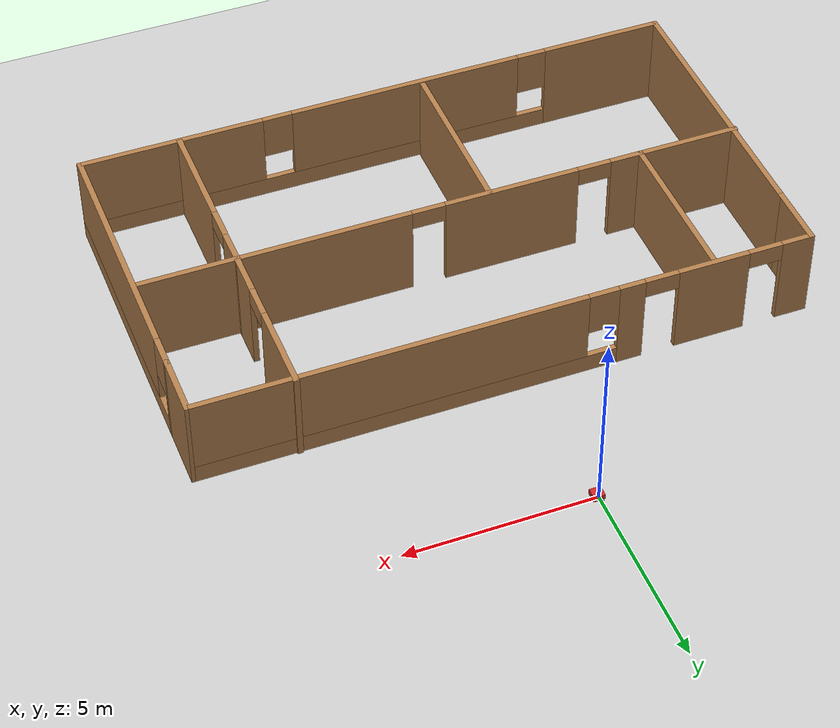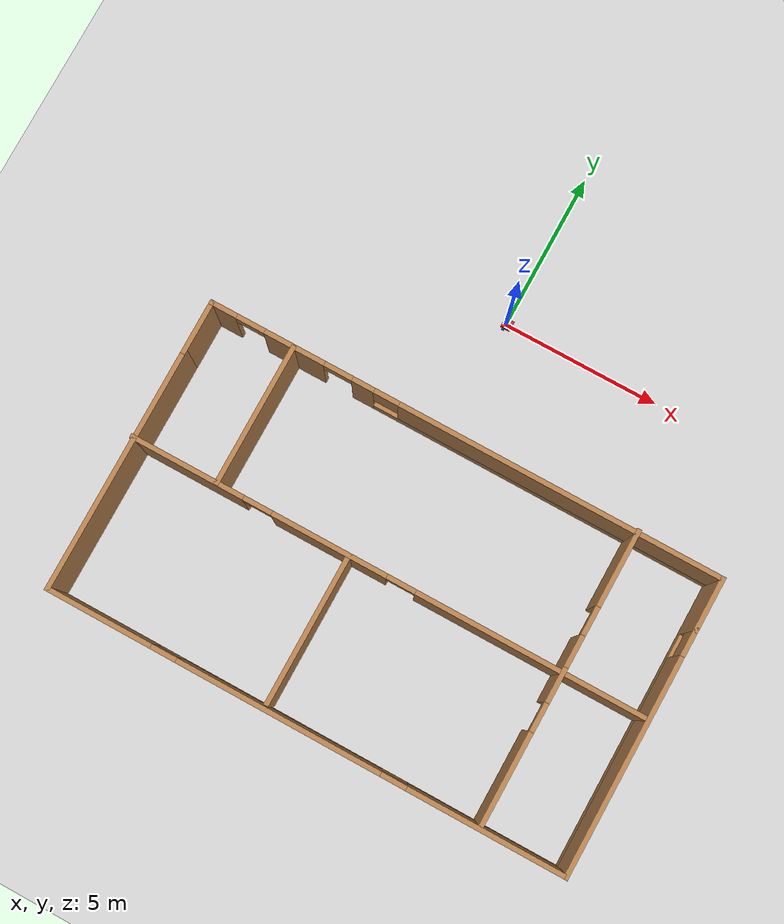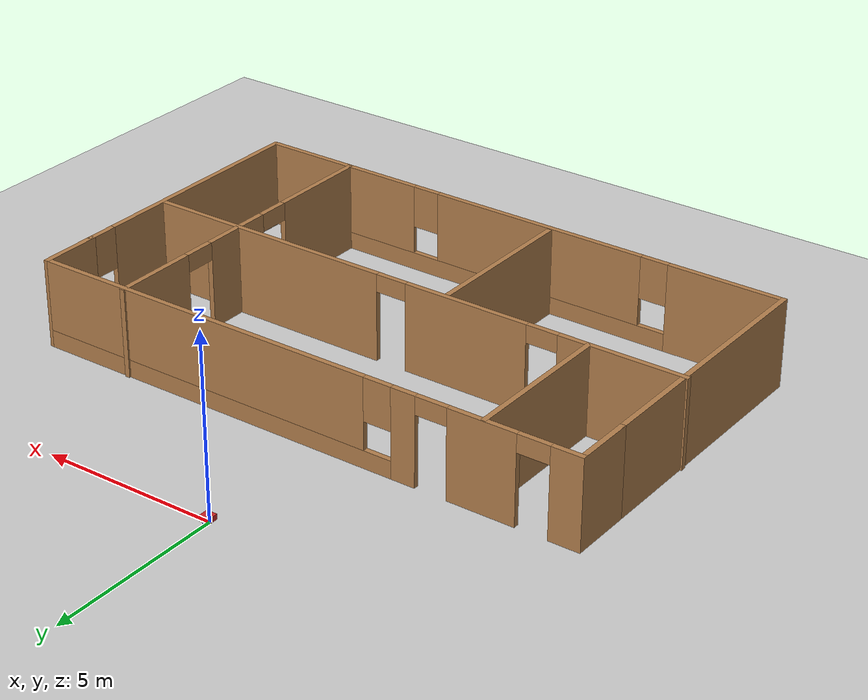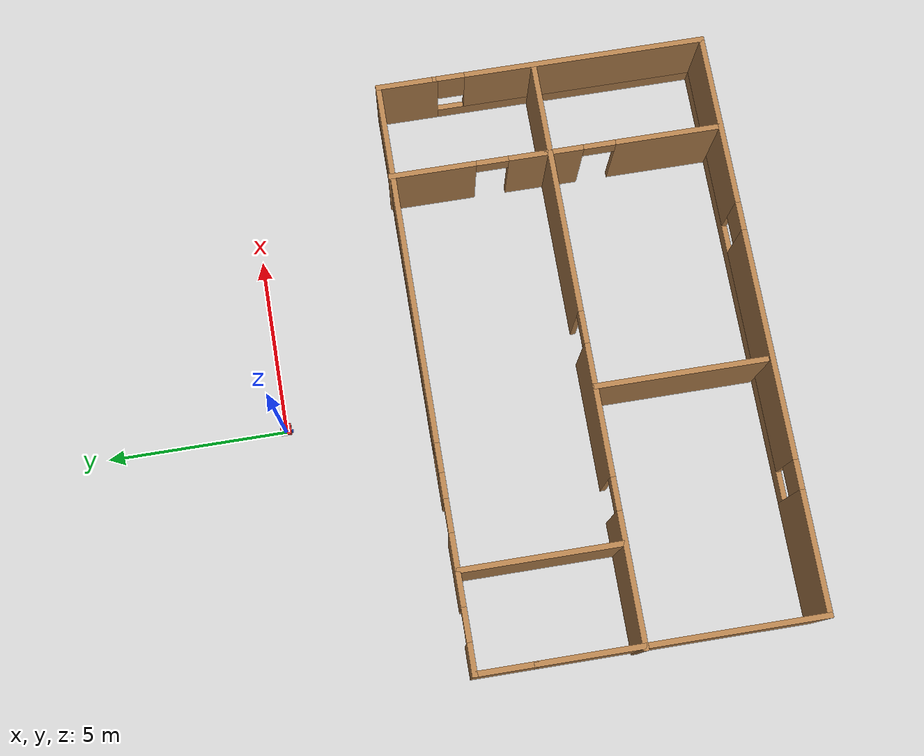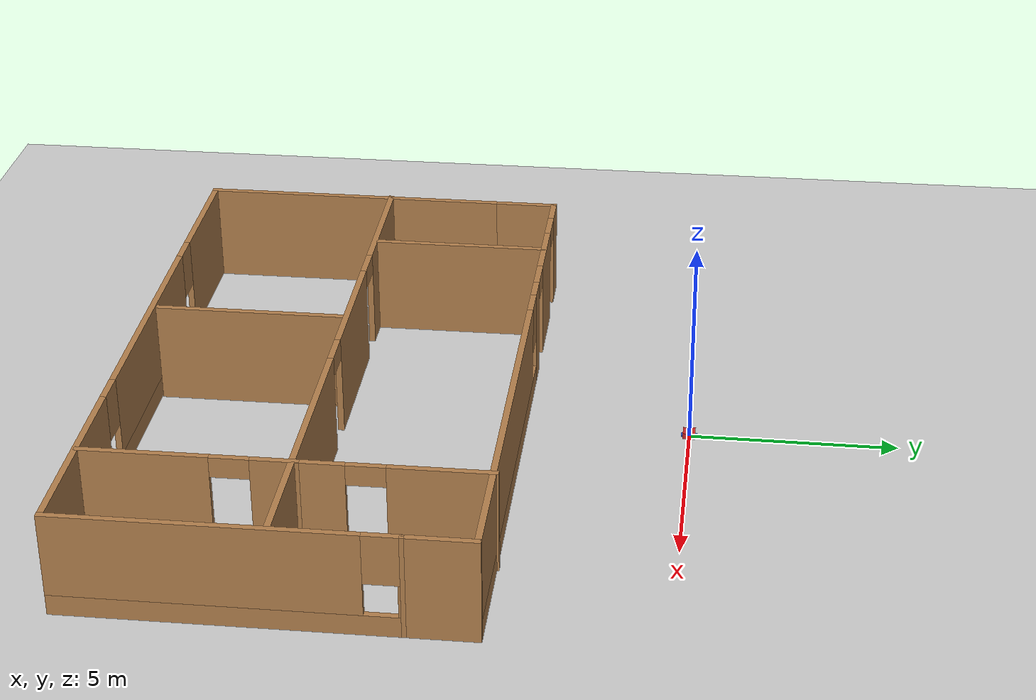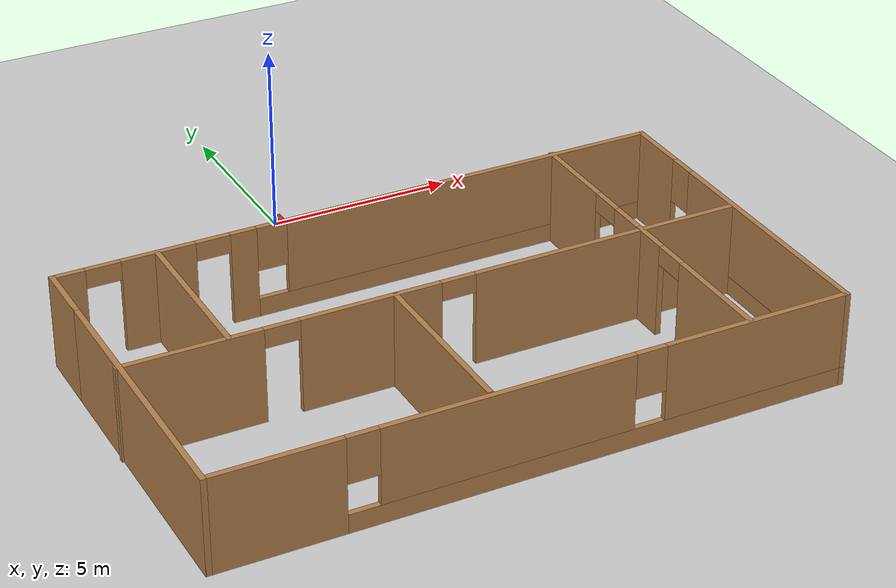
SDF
<sdf version="1.7">
 <world name="default">
  <light name="sun" type="directional">
   <pose>0 0 10 0 -0 0</pose>
   <diffuse>0.8 0.8 0.8 1</diffuse>
   <specular>0.2 0.2 0.2 1</specular>
   <attenuation>
    <range>1000</range>
    <constant>0.9</constant>
    <linear>0.01</linear>
    <quadratic>0.001</quadratic>
   </attenuation>
   <direction>-0.5 0.1 -0.9</direction>
   <spot><inner_angle>0</inner_angle><outer_angle>0</outer_angle><falloff>0</falloff></spot>
  </light>
  <model name="ground_plane">
   <static>1</static>
   <link name="link">
    <collision name="collision">
     <geometry><plane><normal>0 0 1</normal><size>100 100</size></plane></geometry>
     <surface>
      <contact><collide_bitmask>65535</collide_bitmask></contact>
      <friction><ode><mu>100</mu><mu2>50</mu2></ode></friction>
     </surface>
    </collision>
    <visual name="visual">
     <cast_shadows>0</cast_shadows>
     <geometry><plane><normal>0 0 1</normal><size>100 100</size></plane></geometry>
     <material>
      <script><uri>file://media/materials/scripts/gazebo.material</uri><name>Gazebo/Grey</name></script>
     </material>
    </visual>
   </link>
  </model>
  <gravity>0 0 -9.8</gravity>
  <magnetic_field>6e-06 2.3e-05 -4.2e-05</magnetic_field>
  <atmosphere type="adiabatic"/>
  <physics type="ode">
   <max_step_size>0.001</max_step_size>
   <real_time_factor>1</real_time_factor>
   <real_time_update_rate>1000</real_time_update_rate>
  </physics>
  <scene><ambient>0.4 0.4 0.4 1</ambient><background>0.7 0.7 0.7 1</background><shadows>1</shadows></scene>
  <audio><device>default</device></audio>
  <spherical_coordinates>
   <surface_model>EARTH_WGS84</surface_model>
   <latitude_deg>0</latitude_deg>
   <longitude_deg>0</longitude_deg>
   <elevation>0</elevation>
   <heading_deg>0</heading_deg>
  </spherical_coordinates>
  <model name="my_bot">
   <link name="base_link">
    <inertial>
     <pose>0.058857 0 0.083857 0 -0 0</pose>
     <mass>0.7</mass>
     <inertia>
      <ixx>0.00724782</ixx>
      <ixy>0</ixy>
      <ixz>0.00111351</ixz>
      <iyy>0.0080813</iyy>
      <iyz>0</iyz>
      <izz>0.00855849</izz>
     </inertia>
    </inertial>
    <collision name="base_link_fixed_joint_lump__chassis_collision">
     <pose>0.05 0 0.075 0 -0 0</pose>
     <geometry><box><size>0.3 0.3 0.15</size></box></geometry>
    </collision>
    <collision name="base_link_fixed_joint_lump__caster_wheel_collision_1">
     <pose>0.14 0 0 0 -0 0</pose>
     <geometry><sphere><radius>0.05</radius></sphere></geometry>
     <surface><friction><ode><mu>0.001</mu><mu2>0.001</mu2></ode></friction></surface>
    </collision>
    <collision name="base_link_fixed_joint_lump__laser_frame_collision_2">
     <pose>0.022 0 0.212 0 -0 0</pose>
     <geometry><cylinder><length>0.04</length><radius>0.05</radius></cylinder></geometry>
    </collision>
    <visual name="base_link_fixed_joint_lump__chassis_visual">
     <pose>0.05 0 0.075 0 -0 0</pose>
     <geometry><box><size>0.3 0.3 0.15</size></box></geometry>
     <material>
      <script><name>Gazebo/Red</name><uri>file://media/materials/scripts/gazebo.material</uri></script>
     </material>
    </visual>
    <visual name="base_link_fixed_joint_lump__camera_link_visual_1">
     <pose>0.205 0 0.08 0 -0 0</pose>
     <geometry><box><size>0.01 0.03 0.03</size></box></geometry>
     <material>
      <script><name>Gazebo/Brown</name><uri>file://media/materials/scripts/gazebo.material</uri></script>
     </material>
    </visual>
    <visual name="base_link_fixed_joint_lump__camera_link_visual_2">
     <pose>0.205 0 0.03 0 -0 0</pose>
     <geometry><cylinder><length>0.1</length><radius>0.002</radius></cylinder></geometry>
     <material>
      <script><name>Gazebo/Brown</name><uri>file://media/materials/scripts/gazebo.material</uri></script>
     </material>
    </visual>
    <visual name="base_link_fixed_joint_lump__caster_wheel_visual_3">
     <pose>0.14 0 0 0 -0 0</pose>
     <geometry><sphere><radius>0.05</radius></sphere></geometry>
     <material>
      <script><name>Gazebo/Black</name><uri>file://media/materials/scripts/gazebo.material</uri></script>
     </material>
    </visual>
    <visual name="base_link_fixed_joint_lump__laser_frame_visual_4">
     <pose>0.022 0 0.212 0 -0 0</pose>
     <geometry><cylinder><length>0.04</length><radius>0.05</radius></cylinder></geometry>
     <material>
      <script><name>Gazebo/Black</name><uri>file://media/materials/scripts/gazebo.material</uri></script>
     </material>
    </visual>
    <visual name="base_link_fixed_joint_lump__laser_frame_visual_5">
     <pose>0.022 0 0.162 0 -0 0</pose>
     <geometry><cylinder><length>0.1</length><radius>0.01</radius></cylinder></geometry>
     <material>
      <script><name>Gazebo/Black</name><uri>file://media/materials/scripts/gazebo.material</uri></script>
     </material>
    </visual>
    <sensor name="camera" type="camera">
     <visualize>1</visualize>
     <update_rate>10</update_rate>
     <camera>
      <horizontal_fov>1.089</horizontal_fov>
      <image><format>R8G8B8</format><width>640</width><height>480</height></image>
      <clip><near>0.05</near><far>8</far></clip>
     </camera>
     <plugin name="camera_controller" filename="libgazebo_ros_camera.so">
      <frame_name>camera_link_optical</frame_name>
     </plugin>
     <pose>0.205 0 0.08 0 -0 0</pose>
    </sensor>
    <sensor name="laser" type="ray">
     <visualize>0</visualize>
     <update_rate>10</update_rate>
     <ray>
      <scan>
       <horizontal>
        <samples>360</samples>
        <min_angle>-3.14</min_angle>
        <max_angle>3.14</max_angle>
        <resolution>1</resolution>
       </horizontal>
       <vertical><samples>1</samples><min_angle>0</min_angle><max_angle>0</max_angle></vertical>
      </scan>
      <range><min>0.3</min><max>12</max></range>
     </ray>
     <plugin name="laser_controller" filename="libgazebo_ros_ray_sensor.so">
      <ros><argument>~/out:=scan</argument></ros>
      <output_type>sensor_msgs/LaserScan</output_type>
      <frame_name>laser_frame</frame_name>
     </plugin>
     <pose>0.022 0 0.212 0 -0 0</pose>
    </sensor>
   </link>
   <joint name="left_wheel_joint" type="revolute">
    <pose relative_to="base_link">0 0.175 0 -1.5708 0 0</pose>
    <parent>base_link</parent>
    <child>left_wheel</child>
    <axis>
     <xyz>0 0 1</xyz>
     <limit><lower>-1e+16</lower><upper>1e+16</upper></limit>
     <dynamics><spring_reference>0</spring_reference><spring_stiffness>0</spring_stiffness></dynamics>
    </axis>
   </joint>
   <link name="left_wheel">
    <pose relative_to="left_wheel_joint">0 0 0 0 -0 0</pose>
    <inertial>
     <mass>0.1</mass>
     <inertia>
      <ixx>7.58333e-05</ixx>
      <ixy>0</ixy>
      <ixz>0</ixz>
      <iyy>7.58333e-05</iyy>
      <iyz>0</iyz>
      <izz>0.000125</izz>
     </inertia>
    </inertial>
    <collision name="left_wheel_collision">
     <geometry><cylinder><length>0.04</length><radius>0.05</radius></cylinder></geometry>
    </collision>
    <visual name="left_wheel_visual">
     <geometry><cylinder><length>0.04</length><radius>0.05</radius></cylinder></geometry>
     <material>
      <script><name>Gazebo/Blue</name><uri>file://media/materials/scripts/gazebo.material</uri></script>
     </material>
    </visual>
   </link>
   <joint name="right_wheel_joint" type="revolute">
    <pose relative_to="base_link">0 -0.175 0 1.5708 -0 0</pose>
    <parent>base_link</parent>
    <child>right_wheel</child>
    <axis>
     <xyz>0 0 -1</xyz>
     <limit><lower>-1e+16</lower><upper>1e+16</upper></limit>
     <dynamics><spring_reference>0</spring_reference><spring_stiffness>0</spring_stiffness></dynamics>
    </axis>
   </joint>
   <link name="right_wheel">
    <pose relative_to="right_wheel_joint">0 0 0 0 -0 0</pose>
    <inertial>
     <mass>0.1</mass>
     <inertia>
      <ixx>7.58333e-05</ixx>
      <ixy>0</ixy>
      <ixz>0</ixz>
      <iyy>7.58333e-05</iyy>
      <iyz>0</iyz>
      <izz>0.000125</izz>
     </inertia>
    </inertial>
    <collision name="right_wheel_collision">
     <geometry><cylinder><length>0.04</length><radius>0.05</radius></cylinder></geometry>
    </collision>
    <visual name="right_wheel_visual">
     <geometry><cylinder><length>0.04</length><radius>0.05</radius></cylinder></geometry>
     <material>
      <script><name>Gazebo/Blue</name><uri>file://media/materials/scripts/gazebo.material</uri></script>
     </material>
    </visual>
   </link>
   <static>0</static>
   <plugin name="gazebo_ros2_control" filename="libgazebo_ros2_control.so">
    <parameters>/home/sampath/dev_ws/install/my_bot/share/my_bot/config/my_controllers.yaml</parameters>
    <parameters>/home/sampath/dev_ws/install/my_bot/share/my_bot/config/gaz_ros2_ctl_use_sim.yaml</parameters>
   </plugin>
   <pose>0.000734 1.8e-05 0.05 0 3e-06 0.000511</pose>
  </model>
  <model name="house1">
   <pose>0.643187 -8.49007 0 0 -0 0</pose>
   <link name="Wall_12">
    <collision name="Wall_12_Collision">
     <geometry><box><size>1.75 0.15 2.5</size></box></geometry>
     <pose>0 0 1.25 0 -0 0</pose>
    </collision>
    <visual name="Wall_12_Visual">
     <pose>0 0 1.25 0 -0 0</pose>
     <geometry><box><size>1.75 0.15 2.5</size></box></geometry>
     <material>
      <script><uri>file://media/materials/scripts/gazebo.material</uri><name>Gazebo/Wood</name></script>
      <ambient>1 1 1 1</ambient>
     </material>
     <meta><layer>0</layer></meta>
    </visual>
    <pose>-8.07599 3.66766 0 0 -0 1.5708</pose>
   </link>
   <link name="Wall_13">
    <pose>-0.025986 4.46767 0 0 -0 0</pose>
    <visual name="Wall_13_Visual_0">
     <pose>-7.68481 0 1.25 0 -0 0</pose>
     <geometry><box><size>0.880381 0.15 2.5</size></box></geometry>
     <material>
      <script><uri>file://media/materials/scripts/gazebo.material</uri><name>Gazebo/Wood</name></script>
      <ambient>1 1 1 1</ambient>
     </material>
     <meta><layer>0</layer></meta>
    </visual>
    <collision name="Wall_13_Collision_0">
     <geometry><box><size>0.880381 0.15 2.5</size></box></geometry>
     <pose>-7.68481 0 1.25 0 -0 0</pose>
    </collision>
    <visual name="Wall_13_Visual_1">
     <pose>-5.38481 0 1.25 0 -0 0</pose>
     <geometry><box><size>1.91962 0.15 2.5</size></box></geometry>
     <material>
      <script><uri>file://media/materials/scripts/gazebo.material</uri><name>Gazebo/Wood</name></script>
      <ambient>1 1 1 1</ambient>
     </material>
     <meta><layer>0</layer></meta>
    </visual>
    <collision name="Wall_13_Collision_1">
     <geometry><box><size>1.91962 0.15 2.5</size></box></geometry>
     <pose>-5.38481 0 1.25 0 -0 0</pose>
    </collision>
    <visual name="Wall_13_Visual_2">
     <pose>-3.17859 0 1.25 0 -0 0</pose>
     <geometry><box><size>0.692812 0.15 2.5</size></box></geometry>
     <material>
      <script><uri>file://media/materials/scripts/gazebo.material</uri><name>Gazebo/Wood</name></script>
      <ambient>1 1 1 1</ambient>
     </material>
     <meta><layer>0</layer></meta>
    </visual>
    <collision name="Wall_13_Collision_2">
     <geometry><box><size>0.692812 0.15 2.5</size></box></geometry>
     <pose>-3.17859 0 1.25 0 -0 0</pose>
    </collision>
    <visual name="Wall_13_Visual_3">
     <pose>2.64641 0 0.25 0 -0 0</pose>
     <geometry><box><size>10.9572 0.15 0.5</size></box></geometry>
     <material>
      <script><uri>file://media/materials/scripts/gazebo.material</uri><name>Gazebo/Wood</name></script>
      <ambient>1 1 1 1</ambient>
     </material>
     <meta><layer>0</layer></meta>
    </visual>
    <collision name="Wall_13_Collision_3">
     <geometry><box><size>10.9572 0.15 0.5</size></box></geometry>
     <pose>2.64641 0 0.25 0 -0 0</pose>
    </collision>
    <visual name="Wall_13_Visual_4">
     <pose>3.04641 0 1.5 0 -0 0</pose>
     <geometry><box><size>10.1572 0.15 2</size></box></geometry>
     <material>
      <script><uri>file://media/materials/scripts/gazebo.material</uri><name>Gazebo/Wood</name></script>
      <ambient>1 1 1 1</ambient>
     </material>
     <meta><layer>0</layer></meta>
    </visual>
    <collision name="Wall_13_Collision_4">
     <geometry><box><size>10.1572 0.15 2</size></box></geometry>
     <pose>3.04641 0 1.5 0 -0 0</pose>
    </collision>
    <visual name="Wall_13_Visual_5">
     <pose>-2.43219 0 1.9 0 -0 0</pose>
     <geometry><box><size>0.8 0.15 1.2</size></box></geometry>
     <material>
      <script><uri>file://media/materials/scripts/gazebo.material</uri><name>Gazebo/Wood</name></script>
      <ambient>1 1 1 1</ambient>
     </material>
     <meta><layer>0</layer></meta>
    </visual>
    <collision name="Wall_13_Collision_5">
     <geometry><box><size>0.8 0.15 1.2</size></box></geometry>
     <pose>-2.43219 0 1.9 0 -0 0</pose>
    </collision>
    <visual name="Wall_13_Visual_6">
     <pose>-6.79462 0 2.25 0 -0 0</pose>
     <geometry><box><size>0.9 0.15 0.5</size></box></geometry>
     <material>
      <script><uri>file://media/materials/scripts/gazebo.material</uri><name>Gazebo/Wood</name></script>
      <ambient>1 1 1 1</ambient>
     </material>
     <meta><layer>0</layer></meta>
    </visual>
    <collision name="Wall_13_Collision_6">
     <geometry><box><size>0.9 0.15 0.5</size></box></geometry>
     <pose>-6.79462 0 2.25 0 -0 0</pose>
    </collision>
    <visual name="Wall_13_Visual_7">
     <pose>-3.975 0 2.25 0 -0 0</pose>
     <geometry><box><size>0.9 0.15 0.5</size></box></geometry>
     <material>
      <script><uri>file://media/materials/scripts/gazebo.material</uri><name>Gazebo/Wood</name></script>
      <ambient>1 1 1 1</ambient>
     </material>
     <meta><layer>0</layer></meta>
    </visual>
    <collision name="Wall_13_Collision_7">
     <geometry><box><size>0.9 0.15 0.5</size></box></geometry>
     <pose>-3.975 0 2.25 0 -0 0</pose>
    </collision>
   </link>
   <link name="Wall_16">
    <collision name="Wall_16_Collision">
     <geometry><box><size>1.75 0.15 2.5</size></box></geometry>
     <pose>0 0 1.25 0 -0 0</pose>
    </collision>
    <visual name="Wall_16_Visual">
     <pose>0 0 1.25 0 -0 0</pose>
     <geometry><box><size>1.75 0.15 2.5</size></box></geometry>
     <material>
      <script><uri>file://media/materials/scripts/gazebo.material</uri><name>Gazebo/Wood</name></script>
      <ambient>1 1 1 1</ambient>
     </material>
     <meta><layer>0</layer></meta>
    </visual>
    <pose>8.12401 3.66766 0 0 -0 1.5708</pose>
   </link>
   <link name="Wall_18">
    <pose>-0.074015 0.072556 0 0 -0 0</pose>
    <visual name="Wall_18_Visual_0">
     <pose>-6.31748 0 1.25 0 -0 0</pose>
     <geometry><box><size>3.61503 0.15 2.5</size></box></geometry>
     <material>
      <script><uri>file://media/materials/scripts/gazebo.material</uri><name>Gazebo/Wood</name></script>
      <ambient>1 1 1 1</ambient>
     </material>
     <meta><layer>0</layer></meta>
    </visual>
    <collision name="Wall_18_Collision_0">
     <geometry><box><size>3.61503 0.15 2.5</size></box></geometry>
     <pose>-6.31748 0 1.25 0 -0 0</pose>
    </collision>
    <visual name="Wall_18_Visual_1">
     <pose>-1.78565 0 1.25 0 -0 0</pose>
     <geometry><box><size>3.64863 0.15 2.5</size></box></geometry>
     <material>
      <script><uri>file://media/materials/scripts/gazebo.material</uri><name>Gazebo/Wood</name></script>
      <ambient>1 1 1 1</ambient>
     </material>
     <meta><layer>0</layer></meta>
    </visual>
    <collision name="Wall_18_Collision_1">
     <geometry><box><size>3.64863 0.15 2.5</size></box></geometry>
     <pose>-1.78565 0 1.25 0 -0 0</pose>
    </collision>
    <visual name="Wall_18_Visual_2">
     <pose>4.53183 0 1.25 0 -0 0</pose>
     <geometry><box><size>7.18634 0.15 2.5</size></box></geometry>
     <material>
      <script><uri>file://media/materials/scripts/gazebo.material</uri><name>Gazebo/Wood</name></script>
      <ambient>1 1 1 1</ambient>
     </material>
     <meta><layer>0</layer></meta>
    </visual>
    <collision name="Wall_18_Collision_2">
     <geometry><box><size>7.18634 0.15 2.5</size></box></geometry>
     <pose>4.53183 0 1.25 0 -0 0</pose>
    </collision>
    <visual name="Wall_18_Visual_3">
     <pose>-4.05997 0 2.25 0 -0 0</pose>
     <geometry><box><size>0.9 0.15 0.5</size></box></geometry>
     <material>
      <script><uri>file://media/materials/scripts/gazebo.material</uri><name>Gazebo/Wood</name></script>
      <ambient>1 1 1 1</ambient>
     </material>
     <meta><layer>0</layer></meta>
    </visual>
    <collision name="Wall_18_Collision_3">
     <geometry><box><size>0.9 0.15 0.5</size></box></geometry>
     <pose>-4.05997 0 2.25 0 -0 0</pose>
    </collision>
    <visual name="Wall_18_Visual_4">
     <pose>0.488664 0 2.25 0 -0 0</pose>
     <geometry><box><size>0.9 0.15 0.5</size></box></geometry>
     <material>
      <script><uri>file://media/materials/scripts/gazebo.material</uri><name>Gazebo/Wood</name></script>
      <ambient>1 1 1 1</ambient>
     </material>
     <meta><layer>0</layer></meta>
    </visual>
    <collision name="Wall_18_Collision_4">
     <geometry><box><size>0.9 0.15 0.5</size></box></geometry>
     <pose>0.488664 0 2.25 0 -0 0</pose>
    </collision>
   </link>
   <link name="Wall_2">
    <collision name="Wall_2_Collision">
     <geometry><box><size>7.75 0.15 2.5</size></box></geometry>
     <pose>0 0 1.25 0 -0 0</pose>
    </collision>
    <visual name="Wall_2_Visual">
     <pose>0 0 1.25 0 -0 0</pose>
     <geometry><box><size>7.75 0.15 2.5</size></box></geometry>
     <material>
      <script><uri>file://media/materials/scripts/gazebo.material</uri><name>Gazebo/Wood</name></script>
      <ambient>1 1 1 1</ambient>
     </material>
     <meta><layer>0</layer></meta>
    </visual>
    <pose>-8.07599 -0.932335 0 0 -0 -1.5708</pose>
   </link>
   <link name="Wall_20">
    <pose>5.46869 2.33979 0 0 -0 -1.5708</pose>
    <visual name="Wall_20_Visual_0">
     <pose>-1.02769 0 1.25 0 -0 0</pose>
     <geometry><box><size>2.44462 0.15 2.5</size></box></geometry>
     <material>
      <script><uri>file://media/materials/scripts/gazebo.material</uri><name>Gazebo/Wood</name></script>
      <ambient>1 1 1 1</ambient>
     </material>
     <meta><layer>0</layer></meta>
    </visual>
    <collision name="Wall_20_Collision_0">
     <geometry><box><size>2.44462 0.15 2.5</size></box></geometry>
     <pose>-1.02769 0 1.25 0 -0 0</pose>
    </collision>
    <visual name="Wall_20_Visual_1">
     <pose>1.67231 0 1.25 0 -0 0</pose>
     <geometry><box><size>1.15538 0.15 2.5</size></box></geometry>
     <material>
      <script><uri>file://media/materials/scripts/gazebo.material</uri><name>Gazebo/Wood</name></script>
      <ambient>1 1 1 1</ambient>
     </material>
     <meta><layer>0</layer></meta>
    </visual>
    <collision name="Wall_20_Collision_1">
     <geometry><box><size>1.15538 0.15 2.5</size></box></geometry>
     <pose>1.67231 0 1.25 0 -0 0</pose>
    </collision>
    <visual name="Wall_20_Visual_2">
     <pose>0.644621 0 2.25 0 -0 0</pose>
     <geometry><box><size>0.9 0.15 0.5</size></box></geometry>
     <material>
      <script><uri>file://media/materials/scripts/gazebo.material</uri><name>Gazebo/Wood</name></script>
      <ambient>1 1 1 1</ambient>
     </material>
     <meta><layer>0</layer></meta>
    </visual>
    <collision name="Wall_20_Collision_2">
     <geometry><box><size>0.9 0.15 0.5</size></box></geometry>
     <pose>0.644621 0 2.25 0 -0 0</pose>
    </collision>
   </link>
   <link name="Wall_21">
    <pose>5.46869 -2.26021 0 0 -0 -1.5708</pose>
    <visual name="Wall_21_Visual_0">
     <pose>-1.94978 0 1.25 0 -0 0</pose>
     <geometry><box><size>1.10044 0.15 2.5</size></box></geometry>
     <material>
      <script><uri>file://media/materials/scripts/gazebo.material</uri><name>Gazebo/Wood</name></script>
      <ambient>1 1 1 1</ambient>
     </material>
     <meta><layer>0</layer></meta>
    </visual>
    <collision name="Wall_21_Collision_0">
     <geometry><box><size>1.10044 0.15 2.5</size></box></geometry>
     <pose>-1.94978 0 1.25 0 -0 0</pose>
    </collision>
    <visual name="Wall_21_Visual_1">
     <pose>1.00022 0 1.25 0 -0 0</pose>
     <geometry><box><size>2.99956 0.15 2.5</size></box></geometry>
     <material>
      <script><uri>file://media/materials/scripts/gazebo.material</uri><name>Gazebo/Wood</name></script>
      <ambient>1 1 1 1</ambient>
     </material>
     <meta><layer>0</layer></meta>
    </visual>
    <collision name="Wall_21_Collision_1">
     <geometry><box><size>2.99956 0.15 2.5</size></box></geometry>
     <pose>1.00022 0 1.25 0 -0 0</pose>
    </collision>
    <visual name="Wall_21_Visual_2">
     <pose>-0.949556 0 2.25 0 -0 0</pose>
     <geometry><box><size>0.9 0.15 0.5</size></box></geometry>
     <material>
      <script><uri>file://media/materials/scripts/gazebo.material</uri><name>Gazebo/Wood</name></script>
      <ambient>1 1 1 1</ambient>
     </material>
     <meta><layer>0</layer></meta>
    </visual>
    <collision name="Wall_21_Collision_2">
     <geometry><box><size>0.9 0.15 0.5</size></box></geometry>
     <pose>-0.949556 0 2.25 0 -0 0</pose>
    </collision>
   </link>
   <link name="Wall_23">
    <collision name="Wall_23_Collision">
     <geometry><box><size>4.5 0.15 2.5</size></box></geometry>
     <pose>0 0 1.25 0 -0 0</pose>
    </collision>
    <visual name="Wall_23_Visual">
     <pose>0 0 1.25 0 -0 0</pose>
     <geometry><box><size>4.5 0.15 2.5</size></box></geometry>
     <material>
      <script><uri>file://media/materials/scripts/gazebo.material</uri><name>Gazebo/Wood</name></script>
      <ambient>1 1 1 1</ambient>
     </material>
     <meta><layer>0</layer></meta>
    </visual>
    <pose>-5.4374 2.25999 0 0 -0 -1.5708</pose>
   </link>
   <link name="Wall_25">
    <collision name="Wall_25_Collision">
     <geometry><box><size>4.75 0.15 2.5</size></box></geometry>
     <pose>0 0 1.25 0 -0 0</pose>
    </collision>
    <visual name="Wall_25_Visual">
     <pose>0 0 1.25 0 -0 0</pose>
     <geometry><box><size>4.75 0.15 2.5</size></box></geometry>
     <material>
      <script><uri>file://media/materials/scripts/gazebo.material</uri><name>Gazebo/Wood</name></script>
      <ambient>1 1 1 1</ambient>
     </material>
     <meta><layer>0</layer></meta>
    </visual>
    <pose>-1.23456 -2.25405 0 0 -0 -1.5708</pose>
   </link>
   <link name="Wall_4">
    <pose>-0.025986 -4.73233 0 0 -0 0</pose>
    <visual name="Wall_4_Visual_0">
     <pose>-6.4495 0 1.25 0 -0 0</pose>
     <geometry><box><size>3.351 0.15 2.5</size></box></geometry>
     <material>
      <script><uri>file://media/materials/scripts/gazebo.material</uri><name>Gazebo/Wood</name></script>
      <ambient>1 1 1 1</ambient>
     </material>
     <meta><layer>0</layer></meta>
    </visual>
    <collision name="Wall_4_Collision_0">
     <geometry><box><size>3.351 0.15 2.5</size></box></geometry>
     <pose>-6.4495 0 1.25 0 -0 0</pose>
    </collision>
    <visual name="Wall_4_Visual_1">
     <pose>1.6755 0 0.25 0 -0 0</pose>
     <geometry><box><size>12.899 0.15 0.5</size></box></geometry>
     <material>
      <script><uri>file://media/materials/scripts/gazebo.material</uri><name>Gazebo/Wood</name></script>
      <ambient>1 1 1 1</ambient>
     </material>
     <meta><layer>0</layer></meta>
    </visual>
    <collision name="Wall_4_Collision_1">
     <geometry><box><size>12.899 0.15 0.5</size></box></geometry>
     <pose>1.6755 0 0.25 0 -0 0</pose>
    </collision>
    <visual name="Wall_4_Visual_2">
     <pose>-0.769674 0 1.5 0 -0 0</pose>
     <geometry><box><size>6.40865 0.15 2</size></box></geometry>
     <material>
      <script><uri>file://media/materials/scripts/gazebo.material</uri><name>Gazebo/Wood</name></script>
      <ambient>1 1 1 1</ambient>
     </material>
     <meta><layer>0</layer></meta>
    </visual>
    <collision name="Wall_4_Collision_2">
     <geometry><box><size>6.40865 0.15 2</size></box></geometry>
     <pose>-0.769674 0 1.5 0 -0 0</pose>
    </collision>
    <visual name="Wall_4_Visual_3">
     <pose>5.67983 0 1.5 0 -0 0</pose>
     <geometry><box><size>4.89035 0.15 2</size></box></geometry>
     <material>
      <script><uri>file://media/materials/scripts/gazebo.material</uri><name>Gazebo/Wood</name></script>
      <ambient>1 1 1 1</ambient>
     </material>
     <meta><layer>0</layer></meta>
    </visual>
    <collision name="Wall_4_Collision_3">
     <geometry><box><size>4.89035 0.15 2</size></box></geometry>
     <pose>5.67983 0 1.5 0 -0 0</pose>
    </collision>
    <visual name="Wall_4_Visual_4">
     <pose>-4.374 0 1.9 0 -0 0</pose>
     <geometry><box><size>0.8 0.15 1.2</size></box></geometry>
     <material>
      <script><uri>file://media/materials/scripts/gazebo.material</uri><name>Gazebo/Wood</name></script>
      <ambient>1 1 1 1</ambient>
     </material>
     <meta><layer>0</layer></meta>
    </visual>
    <collision name="Wall_4_Collision_4">
     <geometry><box><size>0.8 0.15 1.2</size></box></geometry>
     <pose>-4.374 0 1.9 0 -0 0</pose>
    </collision>
    <visual name="Wall_4_Visual_5">
     <pose>2.83465 0 1.9 0 -0 0</pose>
     <geometry><box><size>0.8 0.15 1.2</size></box></geometry>
     <material>
      <script><uri>file://media/materials/scripts/gazebo.material</uri><name>Gazebo/Wood</name></script>
      <ambient>1 1 1 1</ambient>
     </material>
     <meta><layer>0</layer></meta>
    </visual>
    <collision name="Wall_4_Collision_5">
     <geometry><box><size>0.8 0.15 1.2</size></box></geometry>
     <pose>2.83465 0 1.9 0 -0 0</pose>
    </collision>
   </link>
   <link name="Wall_7">
    <pose>8.12401 -0.932335 0 0 -0 -1.5708</pose>
    <visual name="Wall_7_Visual_0">
     <pose>-3.82382 0 1.25 0 -0 0</pose>
     <geometry><box><size>0.10302 0.15 2.5</size></box></geometry>
     <material>
      <script><uri>file://media/materials/scripts/gazebo.material</uri><name>Gazebo/Wood</name></script>
      <ambient>1 1 1 1</ambient>
     </material>
     <meta><layer>0</layer></meta>
    </visual>
    <collision name="Wall_7_Collision_0">
     <geometry><box><size>0.10302 0.15 2.5</size></box></geometry>
     <pose>-3.82382 0 1.25 0 -0 0</pose>
    </collision>
    <visual name="Wall_7_Visual_1">
     <pose>0.05151 0 0.25 0 -0 0</pose>
     <geometry><box><size>7.64764 0.15 0.5</size></box></geometry>
     <material>
      <script><uri>file://media/materials/scripts/gazebo.material</uri><name>Gazebo/Wood</name></script>
      <ambient>1 1 1 1</ambient>
     </material>
     <meta><layer>0</layer></meta>
    </visual>
    <collision name="Wall_7_Collision_1">
     <geometry><box><size>7.64764 0.15 0.5</size></box></geometry>
     <pose>0.05151 0 0.25 0 -0 0</pose>
    </collision>
    <visual name="Wall_7_Visual_2">
     <pose>0.45151 0 1.5 0 -0 0</pose>
     <geometry><box><size>6.84764 0.15 2</size></box></geometry>
     <material>
      <script><uri>file://media/materials/scripts/gazebo.material</uri><name>Gazebo/Wood</name></script>
      <ambient>1 1 1 1</ambient>
     </material>
     <meta><layer>0</layer></meta>
    </visual>
    <collision name="Wall_7_Collision_2">
     <geometry><box><size>6.84764 0.15 2</size></box></geometry>
     <pose>0.45151 0 1.5 0 -0 0</pose>
    </collision>
    <visual name="Wall_7_Visual_3">
     <pose>-3.37231 0 1.9 0 -0 0</pose>
     <geometry><box><size>0.8 0.15 1.2</size></box></geometry>
     <material>
      <script><uri>file://media/materials/scripts/gazebo.material</uri><name>Gazebo/Wood</name></script>
      <ambient>1 1 1 1</ambient>
     </material>
     <meta><layer>0</layer></meta>
    </visual>
    <collision name="Wall_7_Collision_3">
     <geometry><box><size>0.8 0.15 1.2</size></box></geometry>
     <pose>-3.37231 0 1.9 0 -0 0</pose>
    </collision>
   </link>
   <static>1</static>
  </model>
 </world>
</sdf>
